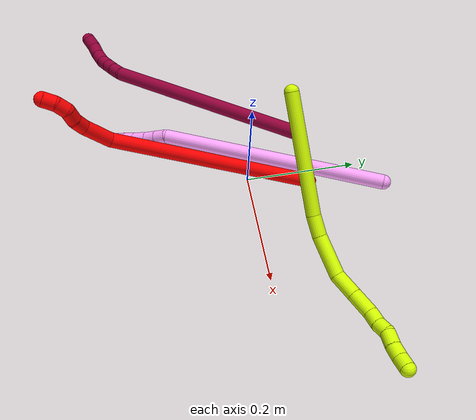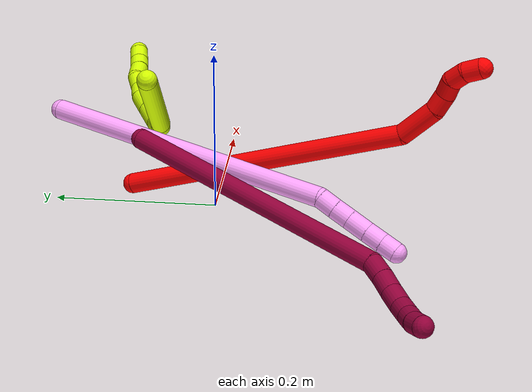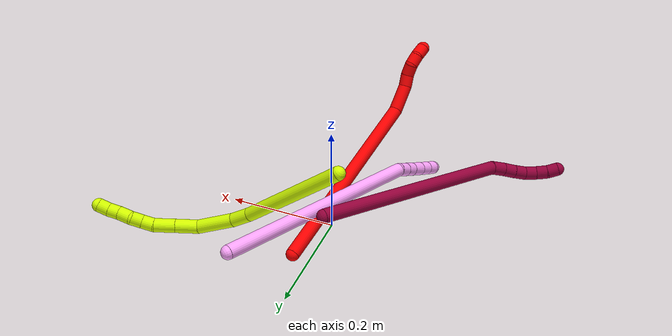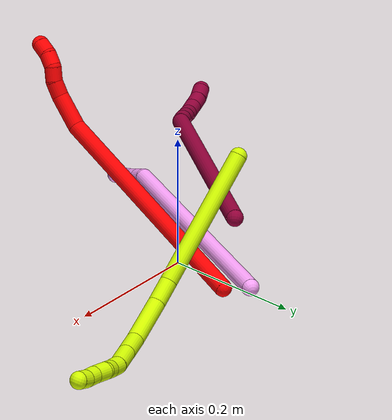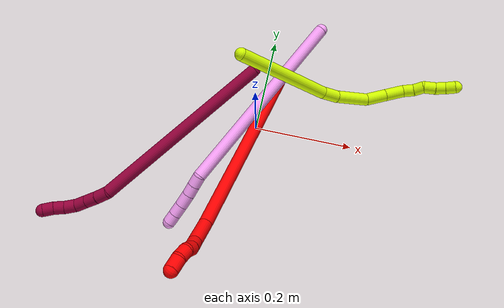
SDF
<sdf version="1.7">
 <world name="default">
  <model name="photoneo_s_sensor">
   <static>1</static>
   <pose>0 0 2 1.57079 1.57079 3.14159</pose>
   <link name="link">
    <inertial><mass>0.1</mass></inertial>
    <sensor name="sensor" type="depth">
     <update_rate>30</update_rate>
     <camera>
      <horizontal_fov>1.22</horizontal_fov>
      <image><width>1920</width><height>1200</height><format>B8G8R8</format></image>
      <clip><near>0.1</near><far>4</far></clip>
      <depth_camera><output>points</output></depth_camera>
     </camera>
     <plugin name="camera_plugin" filename="libgazebo_ros_depth_camera.so">
      <baseline>0.2</baseline>
      <alwaysOn>1</alwaysOn>
      <updateRate>0.0</updateRate>
      <cameraName>camera_ir</cameraName>
      <imageTopicName>/camera/color/image_raw</imageTopicName>
      <cameraInfoTopicName>/camera/color/camera_info</cameraInfoTopicName>
      <depthImageTopicName>/camera/depth/image_raw</depthImageTopicName>
      <depthImageCameraInfoTopicName>/camera/depth/camera_info</depthImageCameraInfoTopicName>
      <pointCloudTopicName>/camera/depth/points</pointCloudTopicName>
      <frameName>fr_optical</frameName>
      <pointCloudCutoff>0.1</pointCloudCutoff>
      <pointCloudCutoffMax>2.0</pointCloudCutoffMax>
      <distortionK1>0</distortionK1>
      <distortionK2>0</distortionK2>
      <distortionK3>0</distortionK3>
      <distortionT1>0</distortionT1>
      <distortionT2>0</distortionT2>
      <CxPrime>0</CxPrime>
      <Cx>0</Cx>
      <Cy>0</Cy>
      <focalLength>0</focalLength>
      <hackBaseline>0</hackBaseline>
     </plugin>
    </sensor>
   </link>
  </model>
  <model name="bin">
   <static>1</static>
   <link name="bottom">
    <collision name="collision-bottom">
     <pose>0 0 -0.01 0 -0 0</pose>
     <geometry><box><size>0.8 0.6 0.02</size></box></geometry>
     <surface>
      <friction><ode><mu>100</mu><mu2>100</mu2></ode></friction>
      <contact><collide_bitmask>65535</collide_bitmask></contact>
     </surface>
    </collision>
   </link>
   <link name="west_wall">
    <collision name="collision-west_wall">
     <pose>-0.41 0 0.1 0 -0 0</pose>
     <geometry><box><size>0.02 0.6 0.2</size></box></geometry>
     <surface>
      <friction><ode><mu>100</mu><mu2>100</mu2></ode></friction>
      <contact><collide_bitmask>65535</collide_bitmask></contact>
     </surface>
    </collision>
   </link>
   <link name="east_wall">
    <collision name="collision-east_wall">
     <pose>0.41 0 0.1 0 -0 0</pose>
     <geometry><box><size>0.02 0.6 0.2</size></box></geometry>
     <surface>
      <friction><ode><mu>100</mu><mu2>100</mu2></ode></friction>
      <contact><collide_bitmask>65535</collide_bitmask></contact>
     </surface>
    </collision>
   </link>
   <link name="south_wall">
    <collision name="collision-south_wall">
     <pose>0 -0.31 0.1 0 -0 0</pose>
     <geometry><box><size>0.8 0.02 0.2</size></box></geometry>
     <surface>
      <friction><ode><mu>100</mu><mu2>100</mu2></ode></friction>
      <contact><collide_bitmask>65535</collide_bitmask></contact>
     </surface>
    </collision>
   </link>
   <link name="north_wall">
    <collision name="collision-north_wall">
     <pose>0 0.31 0.1 0 -0 0</pose>
     <geometry><box><size>0.8 0.02 0.2</size></box></geometry>
     <surface>
      <friction><ode><mu>100</mu><mu2>100</mu2></ode></friction>
      <contact><collide_bitmask>65535</collide_bitmask></contact>
     </surface>
    </collision>
   </link>
  </model>
  <model name="2">
   <static>0</static>
   <link name="2">
    <collision name="collision-cylinder-e_1_1_4">
     <pose>0.044832 -0.1276 -0.120019 2.32559 0.250547 0.566983</pose>
     <geometry><cylinder><radius>0.0125</radius><length>0.361641</length></cylinder></geometry>
     <surface>
      <friction><ode><mu>1.16</mu><mu2>1.16</mu2><slip1>0</slip1><slip2>0</slip2></ode></friction>
      <contact><ode><kp>1e+06</kp><kd>1</kd><max_vel>0</max_vel><min_depth>0.001</min_depth></ode></contact>
     </surface>
    </collision>
    <visual name="visual-cylinder-e_1_1_4">
     <pose>0.044832 -0.1276 -0.120019 2.32559 0.250547 0.566983</pose>
     <geometry><cylinder><radius>0.0125</radius><length>0.361641</length></cylinder></geometry>
     <material><ambient>1 0 0 1</ambient></material>
    </visual>
    <collision name="collision-cylinder-e_2_4_5">
     <pose>0.095067 -0.279358 -0.247589 1.87373 0.210349 0.285238</pose>
     <geometry><cylinder><radius>0.0125</radius><length>0.051764</length></cylinder></geometry>
     <surface>
      <friction><ode><mu>1.16</mu><mu2>1.16</mu2><slip1>0</slip1><slip2>0</slip2></ode></friction>
      <contact><ode><kp>1e+06</kp><kd>1</kd><max_vel>0</max_vel><min_depth>0.001</min_depth></ode></contact>
     </surface>
    </collision>
    <visual name="visual-cylinder-e_2_4_5">
     <pose>0.095067 -0.279358 -0.247589 1.87373 0.210349 0.285238</pose>
     <geometry><cylinder><radius>0.0125</radius><length>0.051764</length></cylinder></geometry>
     <material><ambient>1 0 0 1</ambient></material>
    </visual>
    <collision name="collision-cylinder-e_3_5_6">
     <pose>0.102778 -0.314869 -0.254927 1.55202 0.200387 0.196683</pose>
     <geometry><cylinder><radius>0.0125</radius><length>0.02317</length></cylinder></geometry>
     <surface>
      <friction><ode><mu>1.16</mu><mu2>1.16</mu2><slip1>0</slip1><slip2>0</slip2></ode></friction>
      <contact><ode><kp>1e+06</kp><kd>1</kd><max_vel>0</max_vel><min_depth>0.001</min_depth></ode></contact>
     </surface>
    </collision>
    <visual name="visual-cylinder-e_3_5_6">
     <pose>0.102778 -0.314869 -0.254927 1.55202 0.200387 0.196683</pose>
     <geometry><cylinder><radius>0.0125</radius><length>0.02317</length></cylinder></geometry>
     <material><ambient>1 0 0 1</ambient></material>
    </visual>
    <collision name="collision-cylinder-e_4_6_7">
     <pose>0.104169 -0.336767 -0.253735 1.47831 -0.086165 -0.078551</pose>
     <geometry><cylinder><radius>0.0125</radius><length>0.021265</length></cylinder></geometry>
     <surface>
      <friction><ode><mu>1.16</mu><mu2>1.16</mu2><slip1>0</slip1><slip2>0</slip2></ode></friction>
      <contact><ode><kp>1e+06</kp><kd>1</kd><max_vel>0</max_vel><min_depth>0.001</min_depth></ode></contact>
     </surface>
    </collision>
    <visual name="visual-cylinder-e_4_6_7">
     <pose>0.104169 -0.336767 -0.253735 1.47831 -0.086165 -0.078551</pose>
     <geometry><cylinder><radius>0.0125</radius><length>0.021265</length></cylinder></geometry>
     <material><ambient>1 0 0 1</ambient></material>
    </visual>
    <collision name="collision-cylinder-e_5_7_8">
     <pose>0.103847 -0.356872 -0.256589 1.95211 0.057545 0.085042</pose>
     <geometry><cylinder><radius>0.0125</radius><length>0.020628</length></cylinder></geometry>
     <surface>
      <friction><ode><mu>1.16</mu><mu2>1.16</mu2><slip1>0</slip1><slip2>0</slip2></ode></friction>
      <contact><ode><kp>1e+06</kp><kd>1</kd><max_vel>0</max_vel><min_depth>0.001</min_depth></ode></contact>
     </surface>
    </collision>
    <visual name="visual-cylinder-e_5_7_8">
     <pose>0.103847 -0.356872 -0.256589 1.95211 0.057545 0.085042</pose>
     <geometry><cylinder><radius>0.0125</radius><length>0.020628</length></cylinder></geometry>
     <material><ambient>1 0 0 1</ambient></material>
    </visual>
    <collision name="collision-cylinder-e_6_8_2">
     <pose>0.106258 -0.374548 -0.267254 2.2704 0.169728 0.361571</pose>
     <geometry><cylinder><radius>0.0125</radius><length>0.021532</length></cylinder></geometry>
     <surface>
      <friction><ode><mu>1.16</mu><mu2>1.16</mu2><slip1>0</slip1><slip2>0</slip2></ode></friction>
      <contact><ode><kp>1e+06</kp><kd>1</kd><max_vel>0</max_vel><min_depth>0.001</min_depth></ode></contact>
     </surface>
    </collision>
    <visual name="visual-cylinder-e_6_8_2">
     <pose>0.106258 -0.374548 -0.267254 2.2704 0.169728 0.361571</pose>
     <geometry><cylinder><radius>0.0125</radius><length>0.021532</length></cylinder></geometry>
     <material><ambient>1 0 0 1</ambient></material>
    </visual>
    <collision name="collision-sphere-2">
     <pose>0.108077 -0.382667 -0.274087 0 -0 0</pose>
     <geometry><sphere><radius>0.0125</radius></sphere></geometry>
     <surface>
      <friction><ode><mu>1.16</mu><mu2>1.16</mu2><slip1>0</slip1><slip2>0</slip2></ode></friction>
      <contact><ode><kp>1e+06</kp><kd>1</kd><max_vel>0</max_vel><min_depth>0.001</min_depth></ode></contact>
     </surface>
    </collision>
    <visual name="visual-sphere-2">
     <pose>0.108077 -0.382667 -0.274087 0 -0 0</pose>
     <geometry><sphere><radius>0.0125</radius></sphere></geometry>
     <material><ambient>1 0 0 1</ambient></material>
    </visual>
    <collision name="collision-sphere-4">
     <pose>0.089663 -0.255199 -0.240038 0 -0 0</pose>
     <geometry><sphere><radius>0.0125</radius></sphere></geometry>
     <surface>
      <friction><ode><mu>1.16</mu><mu2>1.16</mu2><slip1>0</slip1><slip2>0</slip2></ode></friction>
      <contact><ode><kp>1e+06</kp><kd>1</kd><max_vel>0</max_vel><min_depth>0.001</min_depth></ode></contact>
     </surface>
    </collision>
    <visual name="visual-sphere-4">
     <pose>0.089663 -0.255199 -0.240038 0 -0 0</pose>
     <geometry><sphere><radius>0.0125</radius></sphere></geometry>
     <material><ambient>1 0 0 1</ambient></material>
    </visual>
    <collision name="collision-sphere-1">
     <geometry><sphere><radius>0.0125</radius></sphere></geometry>
     <surface>
      <friction><ode><mu>1.16</mu><mu2>1.16</mu2><slip1>0</slip1><slip2>0</slip2></ode></friction>
      <contact><ode><kp>1e+06</kp><kd>1</kd><max_vel>0</max_vel><min_depth>0.001</min_depth></ode></contact>
     </surface>
    </collision>
    <visual name="visual-sphere-1">
     <geometry><sphere><radius>0.0125</radius></sphere></geometry>
     <material><ambient>1 0 0 1</ambient></material>
    </visual>
    <collision name="collision-sphere-8">
     <pose>0.10444 -0.366429 -0.260421 0 -0 0</pose>
     <geometry><sphere><radius>0.0125</radius></sphere></geometry>
     <surface>
      <friction><ode><mu>1.16</mu><mu2>1.16</mu2><slip1>0</slip1><slip2>0</slip2></ode></friction>
      <contact><ode><kp>1e+06</kp><kd>1</kd><max_vel>0</max_vel><min_depth>0.001</min_depth></ode></contact>
     </surface>
    </collision>
    <visual name="visual-sphere-8">
     <pose>0.10444 -0.366429 -0.260421 0 -0 0</pose>
     <geometry><sphere><radius>0.0125</radius></sphere></geometry>
     <material><ambient>1 0 0 1</ambient></material>
    </visual>
    <collision name="collision-sphere-5">
     <pose>0.100472 -0.303517 -0.25514 0 -0 0</pose>
     <geometry><sphere><radius>0.0125</radius></sphere></geometry>
     <surface>
      <friction><ode><mu>1.16</mu><mu2>1.16</mu2><slip1>0</slip1><slip2>0</slip2></ode></friction>
      <contact><ode><kp>1e+06</kp><kd>1</kd><max_vel>0</max_vel><min_depth>0.001</min_depth></ode></contact>
     </surface>
    </collision>
    <visual name="visual-sphere-5">
     <pose>0.100472 -0.303517 -0.25514 0 -0 0</pose>
     <geometry><sphere><radius>0.0125</radius></sphere></geometry>
     <material><ambient>1 0 0 1</ambient></material>
    </visual>
    <collision name="collision-sphere-6">
     <pose>0.105084 -0.32622 -0.254714 0 -0 0</pose>
     <geometry><sphere><radius>0.0125</radius></sphere></geometry>
     <surface>
      <friction><ode><mu>1.16</mu><mu2>1.16</mu2><slip1>0</slip1><slip2>0</slip2></ode></friction>
      <contact><ode><kp>1e+06</kp><kd>1</kd><max_vel>0</max_vel><min_depth>0.001</min_depth></ode></contact>
     </surface>
    </collision>
    <visual name="visual-sphere-6">
     <pose>0.105084 -0.32622 -0.254714 0 -0 0</pose>
     <geometry><sphere><radius>0.0125</radius></sphere></geometry>
     <material><ambient>1 0 0 1</ambient></material>
    </visual>
    <collision name="collision-sphere-7">
     <pose>0.103254 -0.347315 -0.252757 0 -0 0</pose>
     <geometry><sphere><radius>0.0125</radius></sphere></geometry>
     <surface>
      <friction><ode><mu>1.16</mu><mu2>1.16</mu2><slip1>0</slip1><slip2>0</slip2></ode></friction>
      <contact><ode><kp>1e+06</kp><kd>1</kd><max_vel>0</max_vel><min_depth>0.001</min_depth></ode></contact>
     </surface>
    </collision>
    <visual name="visual-sphere-7">
     <pose>0.103254 -0.347315 -0.252757 0 -0 0</pose>
     <geometry><sphere><radius>0.0125</radius></sphere></geometry>
     <material><ambient>1 0 0 1</ambient></material>
    </visual>
    <inertial>
     <pose>0.060321 -0.180978 -0.15714 0 -0 0</pose>
     <mass>0.5</mass>
     <inertia>
      <ixx>0.005323</ixx>
      <ixy>0</ixy>
      <ixz>0</ixz>
      <iyy>0.000126</iyy>
      <iyz>0</iyz>
      <izz>0.001805</izz>
     </inertia>
    </inertial>
   </link>
   <pose>0.027718 0.107981 0.011693 -1.09179 0.025914 -0.469892</pose>
  </model>
  <model name="4">
   <static>0</static>
   <link name="4">
    <collision name="collision-cylinder-e_1_1_4">
     <pose>-0.024561 -0.030937 0.189865 0.161523 -0.126991 -0.010292</pose>
     <geometry><cylinder><radius>0.0125</radius><length>0.38786</length></cylinder></geometry>
     <surface>
      <friction><ode><mu>1.16</mu><mu2>1.16</mu2><slip1>0</slip1><slip2>0</slip2></ode></friction>
      <contact><ode><kp>1e+06</kp><kd>1</kd><max_vel>0</max_vel><min_depth>0.001</min_depth></ode></contact>
     </surface>
    </collision>
    <visual name="visual-cylinder-e_1_1_4">
     <pose>-0.024561 -0.030937 0.189865 0.161523 -0.126991 -0.010292</pose>
     <geometry><cylinder><radius>0.0125</radius><length>0.38786</length></cylinder></geometry>
     <material><ambient>1 0.65098 0.996078 1</ambient></material>
    </visual>
    <collision name="collision-cylinder-e_2_4_5">
     <pose>-0.054332 -0.06518 0.388758 0.350992 -0.49655 -0.089843</pose>
     <geometry><cylinder><radius>0.0125</radius><length>0.02187</length></cylinder></geometry>
     <surface>
      <friction><ode><mu>1.16</mu><mu2>1.16</mu2><slip1>0</slip1><slip2>0</slip2></ode></friction>
      <contact><ode><kp>1e+06</kp><kd>1</kd><max_vel>0</max_vel><min_depth>0.001</min_depth></ode></contact>
     </surface>
    </collision>
    <visual name="visual-cylinder-e_2_4_5">
     <pose>-0.054332 -0.06518 0.388758 0.350992 -0.49655 -0.089843</pose>
     <geometry><cylinder><radius>0.0125</radius><length>0.02187</length></cylinder></geometry>
     <material><ambient>1 0.65098 0.996078 1</ambient></material>
    </visual>
    <collision name="collision-cylinder-e_3_5_6">
     <pose>-0.064521 -0.071868 0.406778 0.359757 -0.478155 -0.088587</pose>
     <geometry><cylinder><radius>0.0125</radius><length>0.021642</length></cylinder></geometry>
     <surface>
      <friction><ode><mu>1.16</mu><mu2>1.16</mu2><slip1>0</slip1><slip2>0</slip2></ode></friction>
      <contact><ode><kp>1e+06</kp><kd>1</kd><max_vel>0</max_vel><min_depth>0.001</min_depth></ode></contact>
     </surface>
    </collision>
    <visual name="visual-cylinder-e_3_5_6">
     <pose>-0.064521 -0.071868 0.406778 0.359757 -0.478155 -0.088587</pose>
     <geometry><cylinder><radius>0.0125</radius><length>0.021642</length></cylinder></geometry>
     <material><ambient>1 0.65098 0.996078 1</ambient></material>
    </visual>
    <collision name="collision-cylinder-e_4_6_7">
     <pose>-0.07538 -0.078632 0.427021 0.292024 -0.464061 -0.069468</pose>
     <geometry><cylinder><radius>0.0125</radius><length>0.026274</length></cylinder></geometry>
     <surface>
      <friction><ode><mu>1.16</mu><mu2>1.16</mu2><slip1>0</slip1><slip2>0</slip2></ode></friction>
      <contact><ode><kp>1e+06</kp><kd>1</kd><max_vel>0</max_vel><min_depth>0.001</min_depth></ode></contact>
     </surface>
    </collision>
    <visual name="visual-cylinder-e_4_6_7">
     <pose>-0.07538 -0.078632 0.427021 0.292024 -0.464061 -0.069468</pose>
     <geometry><cylinder><radius>0.0125</radius><length>0.026274</length></cylinder></geometry>
     <material><ambient>1 0.65098 0.996078 1</ambient></material>
    </visual>
    <collision name="collision-cylinder-e_5_7_8">
     <pose>-0.086006 -0.084613 0.447962 0.262032 -0.441836 -0.05917</pose>
     <geometry><cylinder><radius>0.0125</radius><length>0.022198</length></cylinder></geometry>
     <surface>
      <friction><ode><mu>1.16</mu><mu2>1.16</mu2><slip1>0</slip1><slip2>0</slip2></ode></friction>
      <contact><ode><kp>1e+06</kp><kd>1</kd><max_vel>0</max_vel><min_depth>0.001</min_depth></ode></contact>
     </surface>
    </collision>
    <visual name="visual-cylinder-e_5_7_8">
     <pose>-0.086006 -0.084613 0.447962 0.262032 -0.441836 -0.05917</pose>
     <geometry><cylinder><radius>0.0125</radius><length>0.022198</length></cylinder></geometry>
     <material><ambient>1 0.65098 0.996078 1</ambient></material>
    </visual>
    <collision name="collision-cylinder-e_6_8_2">
     <pose>-0.095061 -0.089586 0.466448 0.263604 -0.44185 -0.059531</pose>
     <geometry><cylinder><radius>0.0125</radius><length>0.020155</length></cylinder></geometry>
     <surface>
      <friction><ode><mu>1.16</mu><mu2>1.16</mu2><slip1>0</slip1><slip2>0</slip2></ode></friction>
      <contact><ode><kp>1e+06</kp><kd>1</kd><max_vel>0</max_vel><min_depth>0.001</min_depth></ode></contact>
     </surface>
    </collision>
    <visual name="visual-cylinder-e_6_8_2">
     <pose>-0.095061 -0.089586 0.466448 0.263604 -0.44185 -0.059531</pose>
     <geometry><cylinder><radius>0.0125</radius><length>0.020155</length></cylinder></geometry>
     <material><ambient>1 0.65098 0.996078 1</ambient></material>
    </visual>
    <collision name="collision-sphere-2">
     <pose>-0.09937 -0.09196 0.475243 0 -0 0</pose>
     <geometry><sphere><radius>0.0125</radius></sphere></geometry>
     <surface>
      <friction><ode><mu>1.16</mu><mu2>1.16</mu2><slip1>0</slip1><slip2>0</slip2></ode></friction>
      <contact><ode><kp>1e+06</kp><kd>1</kd><max_vel>0</max_vel><min_depth>0.001</min_depth></ode></contact>
     </surface>
    </collision>
    <visual name="visual-sphere-2">
     <pose>-0.09937 -0.09196 0.475243 0 -0 0</pose>
     <geometry><sphere><radius>0.0125</radius></sphere></geometry>
     <material><ambient>1 0.65098 0.996078 1</ambient></material>
    </visual>
    <collision name="collision-sphere-4">
     <pose>-0.049123 -0.061874 0.379729 0 -0 0</pose>
     <geometry><sphere><radius>0.0125</radius></sphere></geometry>
     <surface>
      <friction><ode><mu>1.16</mu><mu2>1.16</mu2><slip1>0</slip1><slip2>0</slip2></ode></friction>
      <contact><ode><kp>1e+06</kp><kd>1</kd><max_vel>0</max_vel><min_depth>0.001</min_depth></ode></contact>
     </surface>
    </collision>
    <visual name="visual-sphere-4">
     <pose>-0.049123 -0.061874 0.379729 0 -0 0</pose>
     <geometry><sphere><radius>0.0125</radius></sphere></geometry>
     <material><ambient>1 0.65098 0.996078 1</ambient></material>
    </visual>
    <collision name="collision-sphere-1">
     <geometry><sphere><radius>0.0125</radius></sphere></geometry>
     <surface>
      <friction><ode><mu>1.16</mu><mu2>1.16</mu2><slip1>0</slip1><slip2>0</slip2></ode></friction>
      <contact><ode><kp>1e+06</kp><kd>1</kd><max_vel>0</max_vel><min_depth>0.001</min_depth></ode></contact>
     </surface>
    </collision>
    <visual name="visual-sphere-1">
     <geometry><sphere><radius>0.0125</radius></sphere></geometry>
     <material><ambient>1 0.65098 0.996078 1</ambient></material>
    </visual>
    <collision name="collision-sphere-8">
     <pose>-0.090752 -0.087212 0.457653 0 -0 0</pose>
     <geometry><sphere><radius>0.0125</radius></sphere></geometry>
     <surface>
      <friction><ode><mu>1.16</mu><mu2>1.16</mu2><slip1>0</slip1><slip2>0</slip2></ode></friction>
      <contact><ode><kp>1e+06</kp><kd>1</kd><max_vel>0</max_vel><min_depth>0.001</min_depth></ode></contact>
     </surface>
    </collision>
    <visual name="visual-sphere-8">
     <pose>-0.090752 -0.087212 0.457653 0 -0 0</pose>
     <geometry><sphere><radius>0.0125</radius></sphere></geometry>
     <material><ambient>1 0.65098 0.996078 1</ambient></material>
    </visual>
    <collision name="collision-sphere-5">
     <pose>-0.059542 -0.068486 0.397786 0 -0 0</pose>
     <geometry><sphere><radius>0.0125</radius></sphere></geometry>
     <surface>
      <friction><ode><mu>1.16</mu><mu2>1.16</mu2><slip1>0</slip1><slip2>0</slip2></ode></friction>
      <contact><ode><kp>1e+06</kp><kd>1</kd><max_vel>0</max_vel><min_depth>0.001</min_depth></ode></contact>
     </surface>
    </collision>
    <visual name="visual-sphere-5">
     <pose>-0.059542 -0.068486 0.397786 0 -0 0</pose>
     <geometry><sphere><radius>0.0125</radius></sphere></geometry>
     <material><ambient>1 0.65098 0.996078 1</ambient></material>
    </visual>
    <collision name="collision-sphere-6">
     <pose>-0.0695 -0.07525 0.415771 0 -0 0</pose>
     <geometry><sphere><radius>0.0125</radius></sphere></geometry>
     <surface>
      <friction><ode><mu>1.16</mu><mu2>1.16</mu2><slip1>0</slip1><slip2>0</slip2></ode></friction>
      <contact><ode><kp>1e+06</kp><kd>1</kd><max_vel>0</max_vel><min_depth>0.001</min_depth></ode></contact>
     </surface>
    </collision>
    <visual name="visual-sphere-6">
     <pose>-0.0695 -0.07525 0.415771 0 -0 0</pose>
     <geometry><sphere><radius>0.0125</radius></sphere></geometry>
     <material><ambient>1 0.65098 0.996078 1</ambient></material>
    </visual>
    <collision name="collision-sphere-7">
     <pose>-0.08126 -0.082014 0.438271 0 -0 0</pose>
     <geometry><sphere><radius>0.0125</radius></sphere></geometry>
     <surface>
      <friction><ode><mu>1.16</mu><mu2>1.16</mu2><slip1>0</slip1><slip2>0</slip2></ode></friction>
      <contact><ode><kp>1e+06</kp><kd>1</kd><max_vel>0</max_vel><min_depth>0.001</min_depth></ode></contact>
     </surface>
    </collision>
    <visual name="visual-sphere-7">
     <pose>-0.08126 -0.082014 0.438271 0 -0 0</pose>
     <geometry><sphere><radius>0.0125</radius></sphere></geometry>
     <material><ambient>1 0.65098 0.996078 1</ambient></material>
    </visual>
    <inertial>
     <pose>-0.035833 -0.04146 0.243023 0 -0 0</pose>
     <mass>0.5</mass>
     <inertia>
      <ixx>0.004788</ixx>
      <ixy>0</ixy>
      <ixz>0</ixz>
      <iyy>0.004766</iyy>
      <iyz>0</iyz>
      <izz>0.00144</izz>
     </inertia>
    </inertial>
   </link>
   <pose>0.091617 0.210587 0.080909 1.18795 -1.28519 -0.215066</pose>
  </model>
  <model name="8">
   <static>0</static>
   <link name="8">
    <collision name="collision-cylinder-e_1_1_4">
     <pose>-0.10749 -0.050785 0.139947 0.34811 -0.625344 -0.113564</pose>
     <geometry><cylinder><radius>0.0125</radius><length>0.36725</length></cylinder></geometry>
     <surface>
      <friction><ode><mu>1.16</mu><mu2>1.16</mu2><slip1>0</slip1><slip2>0</slip2></ode></friction>
      <contact><ode><kp>1e+06</kp><kd>1</kd><max_vel>0</max_vel><min_depth>0.001</min_depth></ode></contact>
     </surface>
    </collision>
    <visual name="visual-cylinder-e_1_1_4">
     <pose>-0.10749 -0.050785 0.139947 0.34811 -0.625344 -0.113564</pose>
     <geometry><cylinder><radius>0.0125</radius><length>0.36725</length></cylinder></geometry>
     <material><ambient>0.584314 0 0.227451 1</ambient></material>
    </visual>
    <collision name="collision-cylinder-e_2_4_5">
     <pose>-0.223925 -0.10073 0.288183 -0.101003 -0.820844 0.04398</pose>
     <geometry><cylinder><radius>0.0125</radius><length>0.02445</length></cylinder></geometry>
     <surface>
      <friction><ode><mu>1.16</mu><mu2>1.16</mu2><slip1>0</slip1><slip2>0</slip2></ode></friction>
      <contact><ode><kp>1e+06</kp><kd>1</kd><max_vel>0</max_vel><min_depth>0.001</min_depth></ode></contact>
     </surface>
    </collision>
    <visual name="visual-cylinder-e_2_4_5">
     <pose>-0.223925 -0.10073 0.288183 -0.101003 -0.820844 0.04398</pose>
     <geometry><cylinder><radius>0.0125</radius><length>0.02445</length></cylinder></geometry>
     <material><ambient>0.584314 0 0.227451 1</ambient></material>
    </visual>
    <collision name="collision-cylinder-e_3_5_6">
     <pose>-0.241339 -0.098339 0.303918 -0.205287 -0.839086 0.091821</pose>
     <geometry><cylinder><radius>0.0125</radius><length>0.022763</length></cylinder></geometry>
     <surface>
      <friction><ode><mu>1.16</mu><mu2>1.16</mu2><slip1>0</slip1><slip2>0</slip2></ode></friction>
      <contact><ode><kp>1e+06</kp><kd>1</kd><max_vel>0</max_vel><min_depth>0.001</min_depth></ode></contact>
     </surface>
    </collision>
    <visual name="visual-cylinder-e_3_5_6">
     <pose>-0.241339 -0.098339 0.303918 -0.205287 -0.839086 0.091821</pose>
     <geometry><cylinder><radius>0.0125</radius><length>0.022763</length></cylinder></geometry>
     <material><ambient>0.584314 0 0.227451 1</ambient></material>
    </visual>
    <collision name="collision-cylinder-e_4_6_7">
     <pose>-0.257998 -0.095456 0.319224 -0.168041 -0.798865 0.071071</pose>
     <geometry><cylinder><radius>0.0125</radius><length>0.022862</length></cylinder></geometry>
     <surface>
      <friction><ode><mu>1.16</mu><mu2>1.16</mu2><slip1>0</slip1><slip2>0</slip2></ode></friction>
      <contact><ode><kp>1e+06</kp><kd>1</kd><max_vel>0</max_vel><min_depth>0.001</min_depth></ode></contact>
     </surface>
    </collision>
    <visual name="visual-cylinder-e_4_6_7">
     <pose>-0.257998 -0.095456 0.319224 -0.168041 -0.798865 0.071071</pose>
     <geometry><cylinder><radius>0.0125</radius><length>0.022862</length></cylinder></geometry>
     <material><ambient>0.584314 0 0.227451 1</ambient></material>
    </visual>
    <collision name="collision-cylinder-e_5_7_8">
     <pose>-0.271507 -0.091513 0.336429 -0.272269 -0.501434 0.070135</pose>
     <geometry><cylinder><radius>0.0125</radius><length>0.022126</length></cylinder></geometry>
     <surface>
      <friction><ode><mu>1.16</mu><mu2>1.16</mu2><slip1>0</slip1><slip2>0</slip2></ode></friction>
      <contact><ode><kp>1e+06</kp><kd>1</kd><max_vel>0</max_vel><min_depth>0.001</min_depth></ode></contact>
     </surface>
    </collision>
    <visual name="visual-cylinder-e_5_7_8">
     <pose>-0.271507 -0.091513 0.336429 -0.272269 -0.501434 0.070135</pose>
     <geometry><cylinder><radius>0.0125</radius><length>0.022126</length></cylinder></geometry>
     <material><ambient>0.584314 0 0.227451 1</ambient></material>
    </visual>
    <collision name="collision-cylinder-e_6_8_9">
     <pose>-0.280132 -0.085758 0.354934 -0.330839 -0.32905 0.05542</pose>
     <geometry><cylinder><radius>0.0125</radius><length>0.020471</length></cylinder></geometry>
     <surface>
      <friction><ode><mu>1.16</mu><mu2>1.16</mu2><slip1>0</slip1><slip2>0</slip2></ode></friction>
      <contact><ode><kp>1e+06</kp><kd>1</kd><max_vel>0</max_vel><min_depth>0.001</min_depth></ode></contact>
     </surface>
    </collision>
    <visual name="visual-cylinder-e_6_8_9">
     <pose>-0.280132 -0.085758 0.354934 -0.330839 -0.32905 0.05542</pose>
     <geometry><cylinder><radius>0.0125</radius><length>0.020471</length></cylinder></geometry>
     <material><ambient>0.584314 0 0.227451 1</ambient></material>
    </visual>
    <collision name="collision-cylinder-e_7_9_2">
     <pose>-0.286023 -0.081253 0.3737 -0.140477 -0.26025 0.018413</pose>
     <geometry><cylinder><radius>0.0125</radius><length>0.020077</length></cylinder></geometry>
     <surface>
      <friction><ode><mu>1.16</mu><mu2>1.16</mu2><slip1>0</slip1><slip2>0</slip2></ode></friction>
      <contact><ode><kp>1e+06</kp><kd>1</kd><max_vel>0</max_vel><min_depth>0.001</min_depth></ode></contact>
     </surface>
    </collision>
    <visual name="visual-cylinder-e_7_9_2">
     <pose>-0.286023 -0.081253 0.3737 -0.140477 -0.26025 0.018413</pose>
     <geometry><cylinder><radius>0.0125</radius><length>0.020077</length></cylinder></geometry>
     <material><ambient>0.584314 0 0.227451 1</ambient></material>
    </visual>
    <collision name="collision-sphere-2">
     <pose>-0.288606 -0.079895 0.383305 0 -0 0</pose>
     <geometry><sphere><radius>0.0125</radius></sphere></geometry>
     <surface>
      <friction><ode><mu>1.16</mu><mu2>1.16</mu2><slip1>0</slip1><slip2>0</slip2></ode></friction>
      <contact><ode><kp>1e+06</kp><kd>1</kd><max_vel>0</max_vel><min_depth>0.001</min_depth></ode></contact>
     </surface>
    </collision>
    <visual name="visual-sphere-2">
     <pose>-0.288606 -0.079895 0.383305 0 -0 0</pose>
     <geometry><sphere><radius>0.0125</radius></sphere></geometry>
     <material><ambient>0.584314 0 0.227451 1</ambient></material>
    </visual>
    <collision name="collision-sphere-9">
     <pose>-0.28344 -0.082612 0.364095 0 -0 0</pose>
     <geometry><sphere><radius>0.0125</radius></sphere></geometry>
     <surface>
      <friction><ode><mu>1.16</mu><mu2>1.16</mu2><slip1>0</slip1><slip2>0</slip2></ode></friction>
      <contact><ode><kp>1e+06</kp><kd>1</kd><max_vel>0</max_vel><min_depth>0.001</min_depth></ode></contact>
     </surface>
    </collision>
    <visual name="visual-sphere-9">
     <pose>-0.28344 -0.082612 0.364095 0 -0 0</pose>
     <geometry><sphere><radius>0.0125</radius></sphere></geometry>
     <material><ambient>0.584314 0 0.227451 1</ambient></material>
    </visual>
    <collision name="collision-sphere-4">
     <pose>-0.21498 -0.10157 0.279893 0 -0 0</pose>
     <geometry><sphere><radius>0.0125</radius></sphere></geometry>
     <surface>
      <friction><ode><mu>1.16</mu><mu2>1.16</mu2><slip1>0</slip1><slip2>0</slip2></ode></friction>
      <contact><ode><kp>1e+06</kp><kd>1</kd><max_vel>0</max_vel><min_depth>0.001</min_depth></ode></contact>
     </surface>
    </collision>
    <visual name="visual-sphere-4">
     <pose>-0.21498 -0.10157 0.279893 0 -0 0</pose>
     <geometry><sphere><radius>0.0125</radius></sphere></geometry>
     <material><ambient>0.584314 0 0.227451 1</ambient></material>
    </visual>
    <collision name="collision-sphere-1">
     <geometry><sphere><radius>0.0125</radius></sphere></geometry>
     <surface>
      <friction><ode><mu>1.16</mu><mu2>1.16</mu2><slip1>0</slip1><slip2>0</slip2></ode></friction>
      <contact><ode><kp>1e+06</kp><kd>1</kd><max_vel>0</max_vel><min_depth>0.001</min_depth></ode></contact>
     </surface>
    </collision>
    <visual name="visual-sphere-1">
     <geometry><sphere><radius>0.0125</radius></sphere></geometry>
     <material><ambient>0.584314 0 0.227451 1</ambient></material>
    </visual>
    <collision name="collision-sphere-8">
     <pose>-0.276825 -0.088905 0.345772 0 -0 0</pose>
     <geometry><sphere><radius>0.0125</radius></sphere></geometry>
     <surface>
      <friction><ode><mu>1.16</mu><mu2>1.16</mu2><slip1>0</slip1><slip2>0</slip2></ode></friction>
      <contact><ode><kp>1e+06</kp><kd>1</kd><max_vel>0</max_vel><min_depth>0.001</min_depth></ode></contact>
     </surface>
    </collision>
    <visual name="visual-sphere-8">
     <pose>-0.276825 -0.088905 0.345772 0 -0 0</pose>
     <geometry><sphere><radius>0.0125</radius></sphere></geometry>
     <material><ambient>0.584314 0 0.227451 1</ambient></material>
    </visual>
    <collision name="collision-sphere-5">
     <pose>-0.23287 -0.09989 0.296473 0 -0 0</pose>
     <geometry><sphere><radius>0.0125</radius></sphere></geometry>
     <surface>
      <friction><ode><mu>1.16</mu><mu2>1.16</mu2><slip1>0</slip1><slip2>0</slip2></ode></friction>
      <contact><ode><kp>1e+06</kp><kd>1</kd><max_vel>0</max_vel><min_depth>0.001</min_depth></ode></contact>
     </surface>
    </collision>
    <visual name="visual-sphere-5">
     <pose>-0.23287 -0.09989 0.296473 0 -0 0</pose>
     <geometry><sphere><radius>0.0125</radius></sphere></geometry>
     <material><ambient>0.584314 0 0.227451 1</ambient></material>
    </visual>
    <collision name="collision-sphere-6">
     <pose>-0.249807 -0.096789 0.311363 0 -0 0</pose>
     <geometry><sphere><radius>0.0125</radius></sphere></geometry>
     <surface>
      <friction><ode><mu>1.16</mu><mu2>1.16</mu2><slip1>0</slip1><slip2>0</slip2></ode></friction>
      <contact><ode><kp>1e+06</kp><kd>1</kd><max_vel>0</max_vel><min_depth>0.001</min_depth></ode></contact>
     </surface>
    </collision>
    <visual name="visual-sphere-6">
     <pose>-0.249807 -0.096789 0.311363 0 -0 0</pose>
     <geometry><sphere><radius>0.0125</radius></sphere></geometry>
     <material><ambient>0.584314 0 0.227451 1</ambient></material>
    </visual>
    <collision name="collision-sphere-7">
     <pose>-0.266189 -0.094122 0.327085 0 -0 0</pose>
     <geometry><sphere><radius>0.0125</radius></sphere></geometry>
     <surface>
      <friction><ode><mu>1.16</mu><mu2>1.16</mu2><slip1>0</slip1><slip2>0</slip2></ode></friction>
      <contact><ode><kp>1e+06</kp><kd>1</kd><max_vel>0</max_vel><min_depth>0.001</min_depth></ode></contact>
     </surface>
    </collision>
    <visual name="visual-sphere-7">
     <pose>-0.266189 -0.094122 0.327085 0 -0 0</pose>
     <geometry><sphere><radius>0.0125</radius></sphere></geometry>
     <material><ambient>0.584314 0 0.227451 1</ambient></material>
    </visual>
    <inertial>
     <pose>-0.147654 -0.061892 0.189741 0 -0 0</pose>
     <mass>0.5</mass>
     <inertia>
      <ixx>0.002942</ixx>
      <ixy>0</ixy>
      <ixz>0</ixz>
      <iyy>0.003586</iyy>
      <iyz>0</iyz>
      <izz>0.003604</izz>
     </inertia>
    </inertial>
   </link>
   <pose>-0.02208 0.086893 0.09628 -0.08759 -1.0284 0.710828</pose>
  </model>
  <model name="15">
   <static>0</static>
   <link name="15">
    <collision name="collision-cylinder-e_1_1_4">
     <pose>0.032853 0.008317 -0.098041 -3.05697 0.322257 -2.63195</pose>
     <geometry><cylinder><radius>0.0125</radius><length>0.207467</length></cylinder></geometry>
     <surface>
      <friction><ode><mu>1.16</mu><mu2>1.16</mu2><slip1>0</slip1><slip2>0</slip2></ode></friction>
      <contact><ode><kp>1e+06</kp><kd>1</kd><max_vel>0</max_vel><min_depth>0.001</min_depth></ode></contact>
     </surface>
    </collision>
    <visual name="visual-cylinder-e_1_1_4">
     <pose>0.032853 0.008317 -0.098041 -3.05697 0.322257 -2.63195</pose>
     <geometry><cylinder><radius>0.0125</radius><length>0.207467</length></cylinder></geometry>
     <material><ambient>0.835294 1 0 1</ambient></material>
    </visual>
    <collision name="collision-cylinder-e_2_4_5">
     <pose>0.073475 0.019699 -0.212344 -2.95523 0.438949 -2.34816</pose>
     <geometry><cylinder><radius>0.0125</radius><length>0.03656</length></cylinder></geometry>
     <surface>
      <friction><ode><mu>1.16</mu><mu2>1.16</mu2><slip1>0</slip1><slip2>0</slip2></ode></friction>
      <contact><ode><kp>1e+06</kp><kd>1</kd><max_vel>0</max_vel><min_depth>0.001</min_depth></ode></contact>
     </surface>
    </collision>
    <visual name="visual-cylinder-e_2_4_5">
     <pose>0.073475 0.019699 -0.212344 -2.95523 0.438949 -2.34816</pose>
     <geometry><cylinder><radius>0.0125</radius><length>0.03656</length></cylinder></geometry>
     <material><ambient>0.835294 1 0 1</ambient></material>
    </visual>
    <collision name="collision-cylinder-e_3_5_6">
     <pose>0.101147 0.032317 -0.256026 -2.80639 0.600879 -2.14192</pose>
     <geometry><cylinder><radius>0.0125</radius><length>0.070407</length></cylinder></geometry>
     <surface>
      <friction><ode><mu>1.16</mu><mu2>1.16</mu2><slip1>0</slip1><slip2>0</slip2></ode></friction>
      <contact><ode><kp>1e+06</kp><kd>1</kd><max_vel>0</max_vel><min_depth>0.001</min_depth></ode></contact>
     </surface>
    </collision>
    <visual name="visual-cylinder-e_3_5_6">
     <pose>0.101147 0.032317 -0.256026 -2.80639 0.600879 -2.14192</pose>
     <geometry><cylinder><radius>0.0125</radius><length>0.070407</length></cylinder></geometry>
     <material><ambient>0.835294 1 0 1</ambient></material>
    </visual>
    <collision name="collision-cylinder-e_4_6_7">
     <pose>0.137166 0.051409 -0.292261 -2.31672 0.892446 -1.65999</pose>
     <geometry><cylinder><radius>0.0125</radius><length>0.041397</length></cylinder></geometry>
     <surface>
      <friction><ode><mu>1.16</mu><mu2>1.16</mu2><slip1>0</slip1><slip2>0</slip2></ode></friction>
      <contact><ode><kp>1e+06</kp><kd>1</kd><max_vel>0</max_vel><min_depth>0.001</min_depth></ode></contact>
     </surface>
    </collision>
    <visual name="visual-cylinder-e_4_6_7">
     <pose>0.137166 0.051409 -0.292261 -2.31672 0.892446 -1.65999</pose>
     <geometry><cylinder><radius>0.0125</radius><length>0.041397</length></cylinder></geometry>
     <material><ambient>0.835294 1 0 1</ambient></material>
    </visual>
    <collision name="collision-cylinder-e_5_7_8">
     <pose>0.167981 0.069686 -0.309174 -2.31825 0.88968 -1.65852</pose>
     <geometry><cylinder><radius>0.0125</radius><length>0.037841</length></cylinder></geometry>
     <surface>
      <friction><ode><mu>1.16</mu><mu2>1.16</mu2><slip1>0</slip1><slip2>0</slip2></ode></friction>
      <contact><ode><kp>1e+06</kp><kd>1</kd><max_vel>0</max_vel><min_depth>0.001</min_depth></ode></contact>
     </surface>
    </collision>
    <visual name="visual-cylinder-e_5_7_8">
     <pose>0.167981 0.069686 -0.309174 -2.31825 0.88968 -1.65852</pose>
     <geometry><cylinder><radius>0.0125</radius><length>0.037841</length></cylinder></geometry>
     <material><ambient>0.835294 1 0 1</ambient></material>
    </visual>
    <collision name="collision-cylinder-e_6_8_9">
     <pose>0.192731 0.081307 -0.320818 -2.45886 1.14409 -2.13316</pose>
     <geometry><cylinder><radius>0.0125</radius><length>0.022082</length></cylinder></geometry>
     <surface>
      <friction><ode><mu>1.16</mu><mu2>1.16</mu2><slip1>0</slip1><slip2>0</slip2></ode></friction>
      <contact><ode><kp>1e+06</kp><kd>1</kd><max_vel>0</max_vel><min_depth>0.001</min_depth></ode></contact>
     </surface>
    </collision>
    <visual name="visual-cylinder-e_6_8_9">
     <pose>0.192731 0.081307 -0.320818 -2.45886 1.14409 -2.13316</pose>
     <geometry><cylinder><radius>0.0125</radius><length>0.022082</length></cylinder></geometry>
     <material><ambient>0.835294 1 0 1</ambient></material>
    </visual>
    <collision name="collision-cylinder-e_7_9_10">
     <pose>0.212279 0.088354 -0.325628 -1.86572 1.14113 -1.42705</pose>
     <geometry><cylinder><radius>0.0125</radius><length>0.020894</length></cylinder></geometry>
     <surface>
      <friction><ode><mu>1.16</mu><mu2>1.16</mu2><slip1>0</slip1><slip2>0</slip2></ode></friction>
      <contact><ode><kp>1e+06</kp><kd>1</kd><max_vel>0</max_vel><min_depth>0.001</min_depth></ode></contact>
     </surface>
    </collision>
    <visual name="visual-cylinder-e_7_9_10">
     <pose>0.212279 0.088354 -0.325628 -1.86572 1.14113 -1.42705</pose>
     <geometry><cylinder><radius>0.0125</radius><length>0.020894</length></cylinder></geometry>
     <material><ambient>0.835294 1 0 1</ambient></material>
    </visual>
    <collision name="collision-cylinder-e_8_10_11">
     <pose>0.232422 0.093303 -0.331384 -2.96851 1.16618 -2.88002</pose>
     <geometry><cylinder><radius>0.0125</radius><length>0.023162</length></cylinder></geometry>
     <surface>
      <friction><ode><mu>1.16</mu><mu2>1.16</mu2><slip1>0</slip1><slip2>0</slip2></ode></friction>
      <contact><ode><kp>1e+06</kp><kd>1</kd><max_vel>0</max_vel><min_depth>0.001</min_depth></ode></contact>
     </surface>
    </collision>
    <visual name="visual-cylinder-e_8_10_11">
     <pose>0.232422 0.093303 -0.331384 -2.96851 1.16618 -2.88002</pose>
     <geometry><cylinder><radius>0.0125</radius><length>0.023162</length></cylinder></geometry>
     <material><ambient>0.835294 1 0 1</ambient></material>
    </visual>
    <collision name="collision-cylinder-e_9_11_12">
     <pose>0.252234 0.096232 -0.339394 -2.59448 1.1483 -2.32302</pose>
     <geometry><cylinder><radius>0.0125</radius><length>0.0201</length></cylinder></geometry>
     <surface>
      <friction><ode><mu>1.16</mu><mu2>1.16</mu2><slip1>0</slip1><slip2>0</slip2></ode></friction>
      <contact><ode><kp>1e+06</kp><kd>1</kd><max_vel>0</max_vel><min_depth>0.001</min_depth></ode></contact>
     </surface>
    </collision>
    <visual name="visual-cylinder-e_9_11_12">
     <pose>0.252234 0.096232 -0.339394 -2.59448 1.1483 -2.32302</pose>
     <geometry><cylinder><radius>0.0125</radius><length>0.0201</length></cylinder></geometry>
     <material><ambient>0.835294 1 0 1</ambient></material>
    </visual>
    <collision name="collision-cylinder-e_10_12_2">
     <pose>0.271032 0.100489 -0.344826 -2.30632 1.28305 -2.06946</pose>
     <geometry><cylinder><radius>0.0125</radius><length>0.02009</length></cylinder></geometry>
     <surface>
      <friction><ode><mu>1.16</mu><mu2>1.16</mu2><slip1>0</slip1><slip2>0</slip2></ode></friction>
      <contact><ode><kp>1e+06</kp><kd>1</kd><max_vel>0</max_vel><min_depth>0.001</min_depth></ode></contact>
     </surface>
    </collision>
    <visual name="visual-cylinder-e_10_12_2">
     <pose>0.271032 0.100489 -0.344826 -2.30632 1.28305 -2.06946</pose>
     <geometry><cylinder><radius>0.0125</radius><length>0.02009</length></cylinder></geometry>
     <material><ambient>0.835294 1 0 1</ambient></material>
    </visual>
    <collision name="collision-sphere-2">
     <pose>0.280665 0.102603 -0.346739 0 -0 0</pose>
     <geometry><sphere><radius>0.0125</radius></sphere></geometry>
     <surface>
      <friction><ode><mu>1.16</mu><mu2>1.16</mu2><slip1>0</slip1><slip2>0</slip2></ode></friction>
      <contact><ode><kp>1e+06</kp><kd>1</kd><max_vel>0</max_vel><min_depth>0.001</min_depth></ode></contact>
     </surface>
    </collision>
    <visual name="visual-sphere-2">
     <pose>0.280665 0.102603 -0.346739 0 -0 0</pose>
     <geometry><sphere><radius>0.0125</radius></sphere></geometry>
     <material><ambient>0.835294 1 0 1</ambient></material>
    </visual>
    <collision name="collision-sphere-12">
     <pose>0.2614 0.098376 -0.342914 0 -0 0</pose>
     <geometry><sphere><radius>0.0125</radius></sphere></geometry>
     <surface>
      <friction><ode><mu>1.16</mu><mu2>1.16</mu2><slip1>0</slip1><slip2>0</slip2></ode></friction>
      <contact><ode><kp>1e+06</kp><kd>1</kd><max_vel>0</max_vel><min_depth>0.001</min_depth></ode></contact>
     </surface>
    </collision>
    <visual name="visual-sphere-12">
     <pose>0.2614 0.098376 -0.342914 0 -0 0</pose>
     <geometry><sphere><radius>0.0125</radius></sphere></geometry>
     <material><ambient>0.835294 1 0 1</ambient></material>
    </visual>
    <collision name="collision-sphere-11">
     <pose>0.243068 0.094088 -0.335875 0 -0 0</pose>
     <geometry><sphere><radius>0.0125</radius></sphere></geometry>
     <surface>
      <friction><ode><mu>1.16</mu><mu2>1.16</mu2><slip1>0</slip1><slip2>0</slip2></ode></friction>
      <contact><ode><kp>1e+06</kp><kd>1</kd><max_vel>0</max_vel><min_depth>0.001</min_depth></ode></contact>
     </surface>
    </collision>
    <visual name="visual-sphere-11">
     <pose>0.243068 0.094088 -0.335875 0 -0 0</pose>
     <geometry><sphere><radius>0.0125</radius></sphere></geometry>
     <material><ambient>0.835294 1 0 1</ambient></material>
    </visual>
    <collision name="collision-sphere-10">
     <pose>0.221776 0.092518 -0.326893 0 -0 0</pose>
     <geometry><sphere><radius>0.0125</radius></sphere></geometry>
     <surface>
      <friction><ode><mu>1.16</mu><mu2>1.16</mu2><slip1>0</slip1><slip2>0</slip2></ode></friction>
      <contact><ode><kp>1e+06</kp><kd>1</kd><max_vel>0</max_vel><min_depth>0.001</min_depth></ode></contact>
     </surface>
    </collision>
    <visual name="visual-sphere-10">
     <pose>0.221776 0.092518 -0.326893 0 -0 0</pose>
     <geometry><sphere><radius>0.0125</radius></sphere></geometry>
     <material><ambient>0.835294 1 0 1</ambient></material>
    </visual>
    <collision name="collision-sphere-9">
     <pose>0.202781 0.08419 -0.324363 0 -0 0</pose>
     <geometry><sphere><radius>0.0125</radius></sphere></geometry>
     <surface>
      <friction><ode><mu>1.16</mu><mu2>1.16</mu2><slip1>0</slip1><slip2>0</slip2></ode></friction>
      <contact><ode><kp>1e+06</kp><kd>1</kd><max_vel>0</max_vel><min_depth>0.001</min_depth></ode></contact>
     </surface>
    </collision>
    <visual name="visual-sphere-9">
     <pose>0.202781 0.08419 -0.324363 0 -0 0</pose>
     <geometry><sphere><radius>0.0125</radius></sphere></geometry>
     <material><ambient>0.835294 1 0 1</ambient></material>
    </visual>
    <collision name="collision-sphere-4">
     <pose>0.065706 0.016633 -0.196083 0 -0 0</pose>
     <geometry><sphere><radius>0.0125</radius></sphere></geometry>
     <surface>
      <friction><ode><mu>1.16</mu><mu2>1.16</mu2><slip1>0</slip1><slip2>0</slip2></ode></friction>
      <contact><ode><kp>1e+06</kp><kd>1</kd><max_vel>0</max_vel><min_depth>0.001</min_depth></ode></contact>
     </surface>
    </collision>
    <visual name="visual-sphere-4">
     <pose>0.065706 0.016633 -0.196083 0 -0 0</pose>
     <geometry><sphere><radius>0.0125</radius></sphere></geometry>
     <material><ambient>0.835294 1 0 1</ambient></material>
    </visual>
    <collision name="collision-sphere-1">
     <geometry><sphere><radius>0.0125</radius></sphere></geometry>
     <surface>
      <friction><ode><mu>1.16</mu><mu2>1.16</mu2><slip1>0</slip1><slip2>0</slip2></ode></friction>
      <contact><ode><kp>1e+06</kp><kd>1</kd><max_vel>0</max_vel><min_depth>0.001</min_depth></ode></contact>
     </surface>
    </collision>
    <visual name="visual-sphere-1">
     <geometry><sphere><radius>0.0125</radius></sphere></geometry>
     <material><ambient>0.835294 1 0 1</ambient></material>
    </visual>
    <collision name="collision-sphere-8">
     <pose>0.18268 0.078424 -0.317273 0 -0 0</pose>
     <geometry><sphere><radius>0.0125</radius></sphere></geometry>
     <surface>
      <friction><ode><mu>1.16</mu><mu2>1.16</mu2><slip1>0</slip1><slip2>0</slip2></ode></friction>
      <contact><ode><kp>1e+06</kp><kd>1</kd><max_vel>0</max_vel><min_depth>0.001</min_depth></ode></contact>
     </surface>
    </collision>
    <visual name="visual-sphere-8">
     <pose>0.18268 0.078424 -0.317273 0 -0 0</pose>
     <geometry><sphere><radius>0.0125</radius></sphere></geometry>
     <material><ambient>0.835294 1 0 1</ambient></material>
    </visual>
    <collision name="collision-sphere-5">
     <pose>0.081244 0.022765 -0.228604 0 -0 0</pose>
     <geometry><sphere><radius>0.0125</radius></sphere></geometry>
     <surface>
      <friction><ode><mu>1.16</mu><mu2>1.16</mu2><slip1>0</slip1><slip2>0</slip2></ode></friction>
      <contact><ode><kp>1e+06</kp><kd>1</kd><max_vel>0</max_vel><min_depth>0.001</min_depth></ode></contact>
     </surface>
    </collision>
    <visual name="visual-sphere-5">
     <pose>0.081244 0.022765 -0.228604 0 -0 0</pose>
     <geometry><sphere><radius>0.0125</radius></sphere></geometry>
     <material><ambient>0.835294 1 0 1</ambient></material>
    </visual>
    <collision name="collision-sphere-6">
     <pose>0.12105 0.041869 -0.283447 0 -0 0</pose>
     <geometry><sphere><radius>0.0125</radius></sphere></geometry>
     <surface>
      <friction><ode><mu>1.16</mu><mu2>1.16</mu2><slip1>0</slip1><slip2>0</slip2></ode></friction>
      <contact><ode><kp>1e+06</kp><kd>1</kd><max_vel>0</max_vel><min_depth>0.001</min_depth></ode></contact>
     </surface>
    </collision>
    <visual name="visual-sphere-6">
     <pose>0.12105 0.041869 -0.283447 0 -0 0</pose>
     <geometry><sphere><radius>0.0125</radius></sphere></geometry>
     <material><ambient>0.835294 1 0 1</ambient></material>
    </visual>
    <collision name="collision-sphere-7">
     <pose>0.153282 0.060948 -0.301076 0 -0 0</pose>
     <geometry><sphere><radius>0.0125</radius></sphere></geometry>
     <surface>
      <friction><ode><mu>1.16</mu><mu2>1.16</mu2><slip1>0</slip1><slip2>0</slip2></ode></friction>
      <contact><ode><kp>1e+06</kp><kd>1</kd><max_vel>0</max_vel><min_depth>0.001</min_depth></ode></contact>
     </surface>
    </collision>
    <visual name="visual-sphere-7">
     <pose>0.153282 0.060948 -0.301076 0 -0 0</pose>
     <geometry><sphere><radius>0.0125</radius></sphere></geometry>
     <material><ambient>0.835294 1 0 1</ambient></material>
    </visual>
    <inertial>
     <pose>0.106496 0.038484 -0.210481 0 -0 0</pose>
     <mass>0.5</mass>
     <inertia>
      <ixx>-0.001005</ixx>
      <ixy>0</ixy>
      <ixz>0</ixz>
      <iyy>0.000329</iyy>
      <iyz>0</iyz>
      <izz>-0.000382</izz>
     </inertia>
    </inertial>
   </link>
   <pose>-0.042884 0.074857 0.18243 0.029578 -0.578148 -0.066681</pose>
  </model>
 </world>
</sdf>
